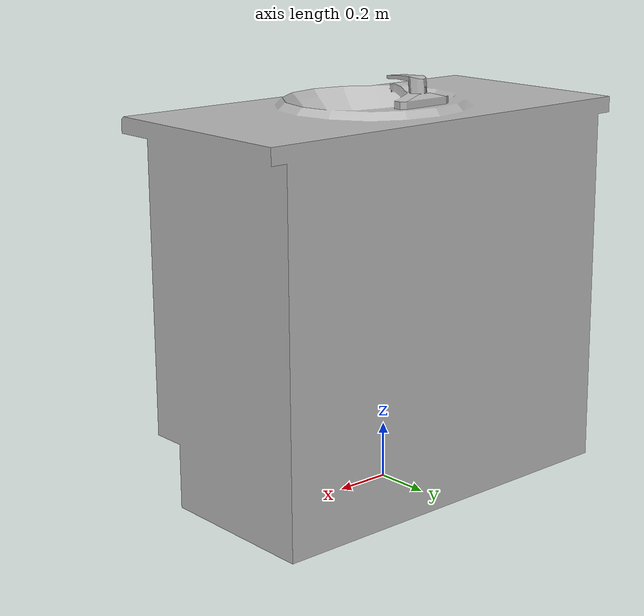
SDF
<?xml version="1.0" ?>
<sdf version="1.5">
  <model name="bathroom_sink">
    <static>true</static>
    <link name="link">
      <collision name="collision">
        <geometry>
          <mesh>
            <uri>model://bathroom_sink/meshes/bathroom_sink.dae</uri>
            <scale>1.4 1.4 1.4</scale>
          </mesh>
        </geometry>
      </collision>
      <visual name="visual">
        <geometry>
          <mesh>
            <uri>model://bathroom_sink/meshes/bathroom_sink.dae</uri>
            <scale>1.4 1.4 1.4</scale>
          </mesh>
        </geometry>
      </visual>
    </link>
  </model>
</sdf>
